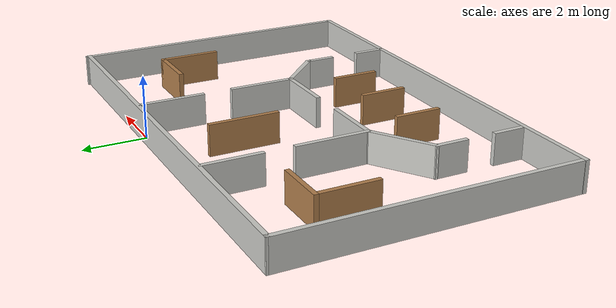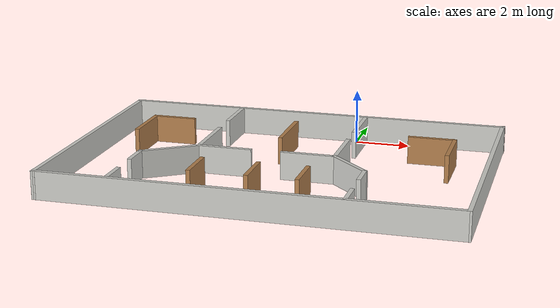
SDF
<?xml version='1.0'?>
<sdf version='1.7'>
  <model name='ahmed_new_home'>
    <pose>-1.70361 -4.54264 0 0 -0 0</pose>
    <link name='Wall_11'>
      <collision name='Wall_11_Collision'>
        <geometry>
          <box>
            <size>2 0.15 1</size>
          </box>
        </geometry>
        <pose>0 0 0.5 0 -0 0</pose>
      </collision>
      <visual name='Wall_11_Visual'>
        <pose>0 0 0.5 0 -0 0</pose>
        <geometry>
          <box>
            <size>2 0.15 1</size>
          </box>
        </geometry>
        <material>
          <script>
            <uri>file://media/materials/scripts/gazebo.material</uri>
            <name>Gazebo/CeilingTiled</name>
          </script>
          <ambient>0.756863 0.490196 0.0666667 1</ambient>
        </material>
        <meta>
          <layer>0</layer>
        </meta>
      </visual>
      <pose>-1.94539 -0.519363 0 0 -0 0</pose>
    </link>
    <link name='Wall_18'>
      <collision name='Wall_18_Collision'>
        <geometry>
          <box>
            <size>1.5 0.15 1</size>
          </box>
        </geometry>
        <pose>0 0 0.5 0 -0 0</pose>
      </collision>
      <visual name='Wall_18_Visual'>
        <pose>0 0 0.5 0 -0 0</pose>
        <geometry>
          <box>
            <size>1.5 0.15 1</size>
          </box>
        </geometry>
        <material>
          <script>
            <uri>file://media/materials/scripts/gazebo.material</uri>
            <name>Gazebo/Wood</name>
          </script>
          <ambient>0.996078 0.47451 0.0196078 1</ambient>
        </material>
        <meta>
          <layer>0</layer>
        </meta>
      </visual>
      <pose>1.42261 -2.53136 0 0 -0 -1.5708</pose>
    </link>
    <link name='Wall_2'>
      <collision name='Wall_2_Collision'>
        <geometry>
          <box>
            <size>14.5053 0.15 1</size>
          </box>
        </geometry>
        <pose>0 0 0.5 0 -0 0</pose>
      </collision>
      <visual name='Wall_2_Visual'>
        <pose>0 0 0.5 0 -0 0</pose>
        <geometry>
          <box>
            <size>14.5053 0.15 1</size>
          </box>
        </geometry>
        <material>
          <script>
            <uri>file://media/materials/scripts/gazebo.material</uri>
            <name>Gazebo/CeilingTiled</name>
          </script>
          <ambient>0.180392 0.203922 0.211765 1</ambient>
        </material>
        <meta>
          <layer>0</layer>
        </meta>
      </visual>
      <pose>-0.010392 -4.67486 0 0 -0 -3.1379</pose>
    </link>
    <link name='Wall_21'>
      <collision name='Wall_21_Collision'>
        <geometry>
          <box>
            <size>1.5 0.15 1</size>
          </box>
        </geometry>
        <pose>0 0 0.5 0 -0 0</pose>
      </collision>
      <visual name='Wall_21_Visual'>
        <pose>0 0 0.5 0 -0 0</pose>
        <geometry>
          <box>
            <size>1.5 0.15 1</size>
          </box>
        </geometry>
        <material>
          <script>
            <uri>file://media/materials/scripts/gazebo.material</uri>
            <name>Gazebo/Wood</name>
          </script>
          <ambient>0.996078 0.47451 0.0196078 1</ambient>
        </material>
        <meta>
          <layer>0</layer>
        </meta>
      </visual>
      <pose>-2.29839 -2.55136 0 0 -0 -1.5708</pose>
    </link>
    <link name='Wall_23'>
      <collision name='Wall_23_Collision'>
        <geometry>
          <box>
            <size>1.5 0.15 1</size>
          </box>
        </geometry>
        <pose>0 0 0.5 0 -0 0</pose>
      </collision>
      <visual name='Wall_23_Visual'>
        <pose>0 0 0.5 0 -0 0</pose>
        <geometry>
          <box>
            <size>1.5 0.15 1</size>
          </box>
        </geometry>
        <material>
          <script>
            <uri>file://media/materials/scripts/gazebo.material</uri>
            <name>Gazebo/Wood</name>
          </script>
          <ambient>0.996078 0.47451 0.0196078 1</ambient>
        </material>
        <meta>
          <layer>0</layer>
        </meta>
      </visual>
      <pose>-0.306392 -2.55136 0 0 -0 -1.5708</pose>
    </link>
    <link name='Wall_25'>
      <collision name='Wall_25_Collision'>
        <geometry>
          <box>
            <size>2 0.15 1</size>
          </box>
        </geometry>
        <pose>0 0 0.5 0 -0 0</pose>
      </collision>
      <visual name='Wall_25_Visual'>
        <pose>0 0 0.5 0 -0 0</pose>
        <geometry>
          <box>
            <size>2 0.15 1</size>
          </box>
        </geometry>
        <material>
          <script>
            <uri>file://media/materials/scripts/gazebo.material</uri>
            <name>Gazebo/CeilingTiled</name>
          </script>
          <ambient>0.756863 0.490196 0.0666667 1</ambient>
        </material>
        <meta>
          <layer>0</layer>
        </meta>
      </visual>
      <pose>1.10061 -0.488363 0 0 -0 0</pose>
    </link>
    <link name='Wall_28'>
      <collision name='Wall_28_Collision'>
        <geometry>
          <box>
            <size>2.25 0.15 1</size>
          </box>
        </geometry>
        <pose>0 0 0.5 0 -0 0</pose>
      </collision>
      <visual name='Wall_28_Visual'>
        <pose>0 0 0.5 0 -0 0</pose>
        <geometry>
          <box>
            <size>2.25 0.15 1</size>
          </box>
        </geometry>
        <material>
          <script>
            <uri>file://media/materials/scripts/gazebo.material</uri>
            <name>Gazebo/Wood</name>
          </script>
          <ambient>0.996078 0.47451 0.0196078 1</ambient>
        </material>
        <meta>
          <layer>0</layer>
        </meta>
      </visual>
      <pose>-0.361392 2.21964 0 0 -0 1.5708</pose>
    </link>
    <link name='Wall_30'>
      <pose>-4.61839 -3.11736 0 0 -0 -1.5708</pose>
      <visual name='Wall_30_Visual_0'>
        <pose>-0.955994 0 0.5 0 -0 0</pose>
        <geometry>
          <box>
            <size>1.08801 0.15 1</size>
          </box>
        </geometry>
        <material>
          <script>
            <uri>file://media/materials/scripts/gazebo.material</uri>
            <name>Gazebo/CeilingTiled</name>
          </script>
          <ambient>0.756863 0.490196 0.0666667 1</ambient>
        </material>
        <meta>
          <layer>0</layer>
        </meta>
      </visual>
      <collision name='Wall_30_Collision_0'>
        <geometry>
          <box>
            <size>1.08801 0.15 1</size>
          </box>
        </geometry>
        <pose>-0.955994 0 0.5 0 -0 0</pose>
      </collision>
      <visual name='Wall_30_Visual_1'>
        <pose>0.994006 0 0.5 0 -0 0</pose>
        <geometry>
          <box>
            <size>1.01199 0.15 1</size>
          </box>
        </geometry>
        <material>
          <script>
            <uri>file://media/materials/scripts/gazebo.material</uri>
            <name>Gazebo/CeilingTiled</name>
          </script>
          <ambient>0.756863 0.490196 0.0666667 1</ambient>
        </material>
        <meta>
          <layer>0</layer>
        </meta>
      </visual>
      <collision name='Wall_30_Collision_1'>
        <geometry>
          <box>
            <size>1.01199 0.15 1</size>
          </box>
        </geometry>
        <pose>0.994006 0 0.5 0 -0 0</pose>
      </collision>
    </link>
    <link name='Wall_32'>
      <collision name='Wall_32_Collision'>
        <geometry>
          <box>
            <size>2.25509 0.15 1</size>
          </box>
        </geometry>
        <pose>0 0 0.5 0 -0 0</pose>
      </collision>
      <visual name='Wall_32_Visual'>
        <pose>0 0 0.5 0 -0 0</pose>
        <geometry>
          <box>
            <size>2.25509 0.15 1</size>
          </box>
        </geometry>
        <material>
          <script>
            <uri>file://media/materials/scripts/gazebo.material</uri>
            <name>Gazebo/CeilingTiled</name>
          </script>
          <ambient>0.756863 0.490196 0.0666667 1</ambient>
        </material>
        <meta>
          <layer>0</layer>
        </meta>
      </visual>
      <pose>-3.74439 -1.10586 0 0 -0 0.591033</pose>
    </link>
    <link name='Wall_33'>
      <pose>-2.87039 2.03064 0 0 -0 1.5708</pose>
      <visual name='Wall_33_Visual_0'>
        <pose>-1.41739 0 0.5 0 -0 0</pose>
        <geometry>
          <box>
            <size>2.41522 0.15 1</size>
          </box>
        </geometry>
        <material>
          <script>
            <uri>file://media/materials/scripts/gazebo.material</uri>
            <name>Gazebo/CeilingTiled</name>
          </script>
          <ambient>0.756863 0.490196 0.0666667 1</ambient>
        </material>
        <meta>
          <layer>0</layer>
        </meta>
      </visual>
      <collision name='Wall_33_Collision_0'>
        <geometry>
          <box>
            <size>2.41522 0.15 1</size>
          </box>
        </geometry>
        <pose>-1.41739 0 0.5 0 -0 0</pose>
      </collision>
      <visual name='Wall_33_Visual_1'>
        <pose>1.65761 0 0.5 0 -0 0</pose>
        <geometry>
          <box>
            <size>1.93478 0.15 1</size>
          </box>
        </geometry>
        <material>
          <script>
            <uri>file://media/materials/scripts/gazebo.material</uri>
            <name>Gazebo/CeilingTiled</name>
          </script>
          <ambient>0.756863 0.490196 0.0666667 1</ambient>
        </material>
        <meta>
          <layer>0</layer>
        </meta>
      </visual>
      <collision name='Wall_33_Collision_1'>
        <geometry>
          <box>
            <size>1.93478 0.15 1</size>
          </box>
        </geometry>
        <pose>1.65761 0 0.5 0 -0 0</pose>
      </collision>
    </link>
    <link name='Wall_35'>
      <collision name='Wall_35_Collision'>
        <geometry>
          <box>
            <size>2 0.15 1</size>
          </box>
        </geometry>
        <pose>0 0 0.5 0 -0 0</pose>
      </collision>
      <visual name='Wall_35_Visual'>
        <pose>0 0 0.5 0 -0 0</pose>
        <geometry>
          <box>
            <size>2 0.15 1</size>
          </box>
        </geometry>
        <material>
          <script>
            <uri>file://media/materials/scripts/gazebo.material</uri>
            <name>Gazebo/CeilingTiled</name>
          </script>
          <ambient>0.756863 0.490196 0.0666667 1</ambient>
        </material>
        <meta>
          <layer>0</layer>
        </meta>
      </visual>
      <pose>2.68011 -1.14236 0 0 -0 -0.785016</pose>
    </link>
    <link name='Wall_36'>
      <pose>3.33461 -3.22136 0 0 -0 -1.5708</pose>
      <visual name='Wall_36_Visual_0'>
        <pose>-0.99459 0 0.5 0 -0 0</pose>
        <geometry>
          <box>
            <size>1.01082 0.15 1</size>
          </box>
        </geometry>
        <material>
          <script>
            <uri>file://media/materials/scripts/gazebo.material</uri>
            <name>Gazebo/CeilingTiled</name>
          </script>
          <ambient>0.756863 0.490196 0.0666667 1</ambient>
        </material>
        <meta>
          <layer>0</layer>
        </meta>
      </visual>
      <collision name='Wall_36_Collision_0'>
        <geometry>
          <box>
            <size>1.01082 0.15 1</size>
          </box>
        </geometry>
        <pose>-0.99459 0 0.5 0 -0 0</pose>
      </collision>
      <visual name='Wall_36_Visual_1'>
        <pose>0.95541 0 0.5 0 -0 0</pose>
        <geometry>
          <box>
            <size>1.08918 0.15 1</size>
          </box>
        </geometry>
        <material>
          <script>
            <uri>file://media/materials/scripts/gazebo.material</uri>
            <name>Gazebo/CeilingTiled</name>
          </script>
          <ambient>0.756863 0.490196 0.0666667 1</ambient>
        </material>
        <meta>
          <layer>0</layer>
        </meta>
      </visual>
      <collision name='Wall_36_Collision_1'>
        <geometry>
          <box>
            <size>1.08918 0.15 1</size>
          </box>
        </geometry>
        <pose>0.95541 0 0.5 0 -0 0</pose>
      </collision>
    </link>
    <link name='Wall_38'>
      <collision name='Wall_38_Collision'>
        <geometry>
          <box>
            <size>14.5 0.15 1</size>
          </box>
        </geometry>
        <pose>0 0 0.5 0 -0 0</pose>
      </collision>
      <visual name='Wall_38_Visual'>
        <pose>0 0 0.5 0 -0 0</pose>
        <geometry>
          <box>
            <size>14.5 0.15 1</size>
          </box>
        </geometry>
        <material>
          <script>
            <uri>file://media/materials/scripts/gazebo.material</uri>
            <name>Gazebo/CeilingTiled</name>
          </script>
          <ambient>0.180392 0.203922 0.211765 1</ambient>
        </material>
        <meta>
          <layer>0</layer>
        </meta>
      </visual>
      <pose>0.013608 4.64864 0 0 -0 3.14159</pose>
    </link>
    <link name='Wall_39'>
      <collision name='Wall_39_Collision'>
        <geometry>
          <box>
            <size>9.5 0.15 1</size>
          </box>
        </geometry>
        <pose>0 0 0.5 0 -0 0</pose>
      </collision>
      <visual name='Wall_39_Visual'>
        <pose>0 0 0.5 0 -0 0</pose>
        <geometry>
          <box>
            <size>9.5 0.15 1</size>
          </box>
        </geometry>
        <material>
          <script>
            <uri>file://media/materials/scripts/gazebo.material</uri>
            <name>Gazebo/CeilingTiled</name>
          </script>
          <ambient>0.180392 0.203922 0.211765 1</ambient>
        </material>
        <meta>
          <layer>0</layer>
        </meta>
      </visual>
      <pose>-7.17489 -0.026363 0 0 -0 -1.57368</pose>
    </link>
    <link name='Wall_41'>
      <collision name='Wall_41_Collision'>
        <geometry>
          <box>
            <size>9.5 0.15 1</size>
          </box>
        </geometry>
        <pose>0 0 0.5 0 -0 0</pose>
      </collision>
      <visual name='Wall_41_Visual'>
        <pose>0 0 0.5 0 -0 0</pose>
        <geometry>
          <box>
            <size>9.5 0.15 1</size>
          </box>
        </geometry>
        <material>
          <script>
            <uri>file://media/materials/scripts/gazebo.material</uri>
            <name>Gazebo/CeilingTiled</name>
          </script>
          <ambient>0.180392 0.203922 0.211765 1</ambient>
        </material>
        <meta>
          <layer>0</layer>
        </meta>
      </visual>
      <pose>7.16761 0.026637 0 0 -0 1.5708</pose>
    </link>
    <link name='Wall_44'>
      <pose>2.02561 2.06164 0 0 -0 1.5708</pose>
      <visual name='Wall_44_Visual_0'>
        <pose>-1.53936 0 0.5 0 -0 0</pose>
        <geometry>
          <box>
            <size>2.17127 0.15 1</size>
          </box>
        </geometry>
        <material>
          <script>
            <uri>file://media/materials/scripts/gazebo.material</uri>
            <name>Gazebo/CeilingTiled</name>
          </script>
          <ambient>0.756863 0.490196 0.0666667 1</ambient>
        </material>
        <meta>
          <layer>0</layer>
        </meta>
      </visual>
      <collision name='Wall_44_Collision_0'>
        <geometry>
          <box>
            <size>2.17127 0.15 1</size>
          </box>
        </geometry>
        <pose>-1.53936 0 0.5 0 -0 0</pose>
      </collision>
      <visual name='Wall_44_Visual_1'>
        <pose>1.53564 0 0.5 0 -0 0</pose>
        <geometry>
          <box>
            <size>2.17873 0.15 1</size>
          </box>
        </geometry>
        <material>
          <script>
            <uri>file://media/materials/scripts/gazebo.material</uri>
            <name>Gazebo/CeilingTiled</name>
          </script>
          <ambient>0.756863 0.490196 0.0666667 1</ambient>
        </material>
        <meta>
          <layer>0</layer>
        </meta>
      </visual>
      <collision name='Wall_44_Collision_1'>
        <geometry>
          <box>
            <size>2.17873 0.15 1</size>
          </box>
        </geometry>
        <pose>1.53564 0 0.5 0 -0 0</pose>
      </collision>
    </link>
    <link name='Wall_46'>
      <collision name='Wall_46_Collision'>
        <geometry>
          <box>
            <size>1.75 0.15 1</size>
          </box>
        </geometry>
        <pose>0 0 0.5 0 -0 0</pose>
      </collision>
      <visual name='Wall_46_Visual'>
        <pose>0 0 0.5 0 -0 0</pose>
        <geometry>
          <box>
            <size>1.75 0.15 1</size>
          </box>
        </geometry>
        <material>
          <script>
            <uri>file://media/materials/scripts/gazebo.material</uri>
            <name>Gazebo/Wood</name>
          </script>
          <ambient>0.996078 0.47451 0.0196078 1</ambient>
        </material>
        <meta>
          <layer>0</layer>
        </meta>
      </visual>
      <pose>4.90661 2.50964 0 0 -0 0</pose>
    </link>
    <link name='Wall_47'>
      <collision name='Wall_47_Collision'>
        <geometry>
          <box>
            <size>2 0.15 1</size>
          </box>
        </geometry>
        <pose>0 0 0.5 0 -0 0</pose>
      </collision>
      <visual name='Wall_47_Visual'>
        <pose>0 0 0.5 0 -0 0</pose>
        <geometry>
          <box>
            <size>2 0.15 1</size>
          </box>
        </geometry>
        <material>
          <script>
            <uri>file://media/materials/scripts/gazebo.material</uri>
            <name>Gazebo/Wood</name>
          </script>
          <ambient>0.996078 0.47451 0.0196078 1</ambient>
        </material>
        <meta>
          <layer>0</layer>
        </meta>
      </visual>
      <pose>5.70661 1.58464 0 0 -0 -1.5708</pose>
    </link>
    <link name='Wall_49'>
      <collision name='Wall_49_Collision'>
        <geometry>
          <box>
            <size>1.6596 0.15 1</size>
          </box>
        </geometry>
        <pose>0 0 0.5 0 -0 0</pose>
      </collision>
      <visual name='Wall_49_Visual'>
        <pose>0 0 0.5 0 -0 0</pose>
        <geometry>
          <box>
            <size>1.6596 0.15 1</size>
          </box>
        </geometry>
        <material>
          <script>
            <uri>file://media/materials/scripts/gazebo.material</uri>
            <name>Gazebo/Wood</name>
          </script>
          <ambient>0.996078 0.47451 0.0196078 1</ambient>
        </material>
        <meta>
          <layer>0</layer>
        </meta>
      </visual>
      <pose>-4.97389 2.66964 0 0 -0 3.14159</pose>
    </link>
    <link name='Wall_50'>
      <collision name='Wall_50_Collision'>
        <geometry>
          <box>
            <size>2 0.15 1</size>
          </box>
        </geometry>
        <pose>0 0 0.5 0 -0 0</pose>
      </collision>
      <visual name='Wall_50_Visual'>
        <pose>0 0 0.5 0 -0 0</pose>
        <geometry>
          <box>
            <size>2 0.15 1</size>
          </box>
        </geometry>
        <material>
          <script>
            <uri>file://media/materials/scripts/gazebo.material</uri>
            <name>Gazebo/Wood</name>
          </script>
          <ambient>0.996078 0.47451 0.0196078 1</ambient>
        </material>
        <meta>
          <layer>0</layer>
        </meta>
      </visual>
      <pose>-5.72839 1.74464 0 0 -0 -1.5708</pose>
    </link>
    <static>1</static>
  </model>
</sdf>
